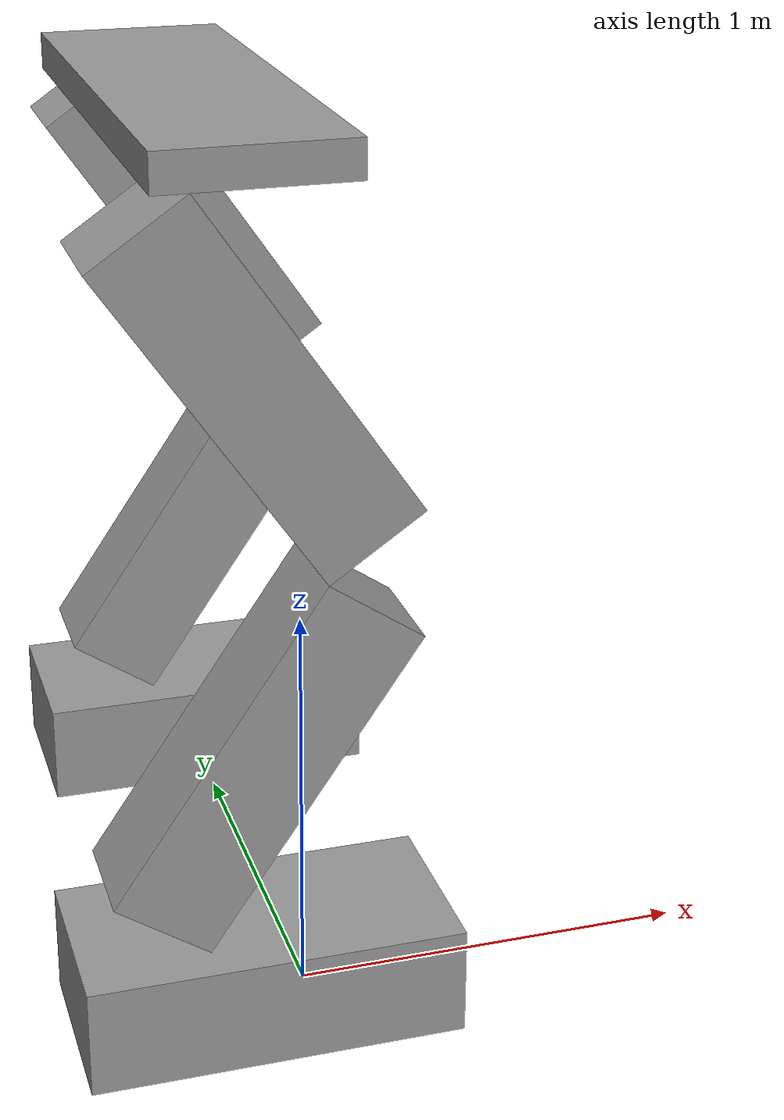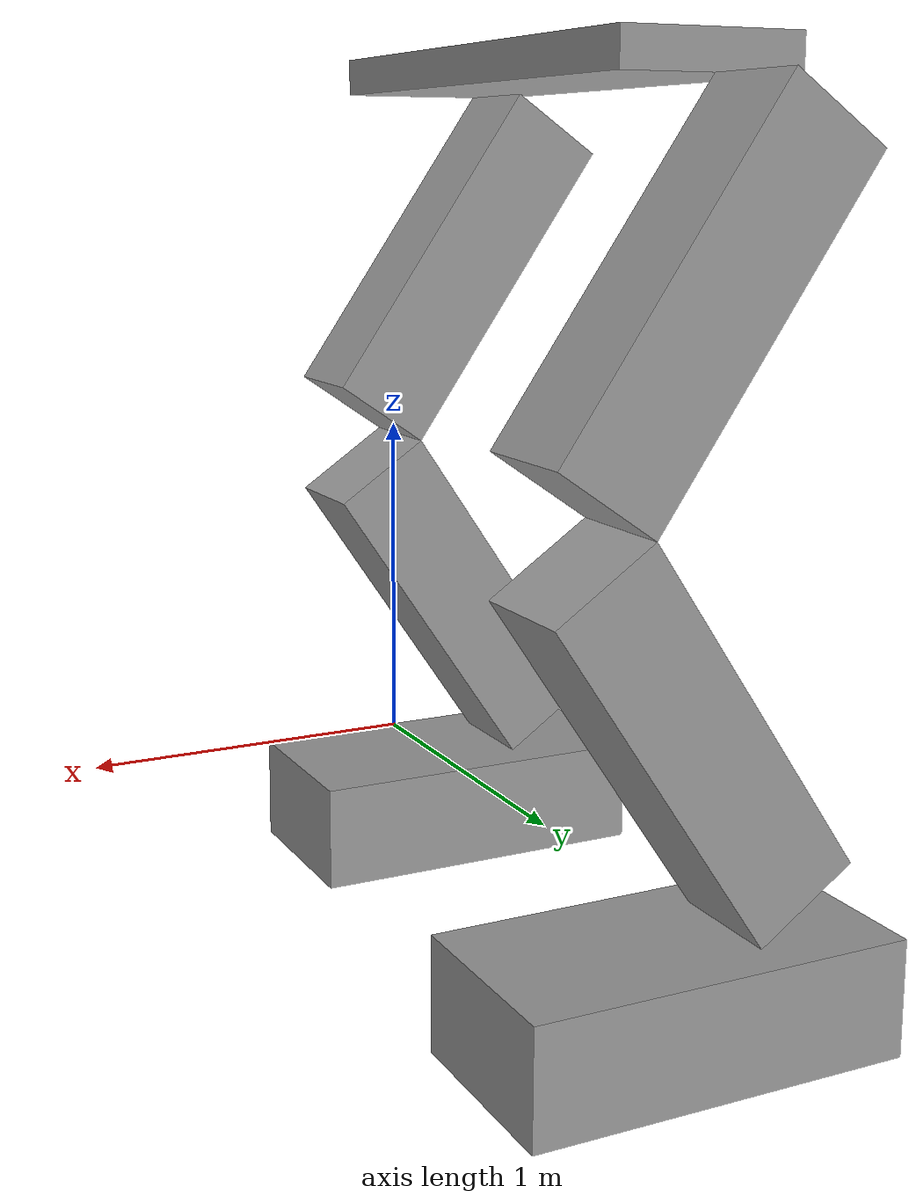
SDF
<?xml version='1.0'?>
<sdf version='1.6'>
  <model name='Humanoid'>
    <link name='link_0'>
      <pose frame=''>-0.048492 0.285713 -0.132344 0 -0 0</pose>
      <inertial>
        <mass>1</mass>
        <inertia>
          <ixx>0.166667</ixx>
          <ixy>0</ixy>
          <ixz>0</ixz>
          <iyy>0.166667</iyy>
          <iyz>0</iyz>
          <izz>0.166667</izz>
        </inertia>
        <pose frame=''>0 0 0 0 -0 0</pose>
      </inertial>
      <gravity>1</gravity>
      <self_collide>0</self_collide>
      <kinematic>0</kinematic>
      <visual name='visual'>
        <pose frame=''>0 0 0 0 -0 0</pose>
        <geometry>
          <box>
            <size>1 0.5 0.3</size>
          </box>
        </geometry>
        <material>
          <lighting>1</lighting>
          <script>
            <uri>file://media/materials/scripts/gazebo.material</uri>
            <name>Gazebo/Grey</name>
          </script>
          <shader type='pixel'>
            <normal_map>__default__</normal_map>
          </shader>
          <ambient>0.3 0.3 0.3 1</ambient>
          <diffuse>0.7 0.7 0.7 1</diffuse>
          <specular>0.01 0.01 0.01 1</specular>
          <emissive>0 0 0 1</emissive>
        </material>
        <transparency>0</transparency>
        <cast_shadows>1</cast_shadows>
      </visual>
      <collision name='collision'>
        <laser_retro>0</laser_retro>
        <max_contacts>10</max_contacts>
        <pose frame=''>0 0 0 0 -0 0</pose>
        <geometry>
          <box>
            <size>1 0.5 0.3</size>
          </box>
        </geometry>
        <surface>
          <friction>
            <ode>
              <mu>1</mu>
              <mu2>1</mu2>
              <fdir1>0 0 0</fdir1>
              <slip1>0</slip1>
              <slip2>0</slip2>
            </ode>
            <torsional>
              <coefficient>1</coefficient>
              <patch_radius>0</patch_radius>
              <surface_radius>0</surface_radius>
              <use_patch_radius>1</use_patch_radius>
              <ode>
                <slip>0</slip>
              </ode>
            </torsional>
          </friction>
          <bounce>
            <restitution_coefficient>0</restitution_coefficient>
            <threshold>1e+06</threshold>
          </bounce>
          <contact>
            <collide_without_contact>0</collide_without_contact>
            <collide_without_contact_bitmask>1</collide_without_contact_bitmask>
            <collide_bitmask>1</collide_bitmask>
            <ode>
              <soft_cfm>0</soft_cfm>
              <soft_erp>0.2</soft_erp>
              <kp>1e+13</kp>
              <kd>1</kd>
              <max_vel>0.01</max_vel>
              <min_depth>0</min_depth>
            </ode>
            <bullet>
              <split_impulse>1</split_impulse>
              <split_impulse_penetration_threshold>-0.01</split_impulse_penetration_threshold>
              <soft_cfm>0</soft_cfm>
              <soft_erp>0.2</soft_erp>
              <kp>1e+13</kp>
              <kd>1</kd>
            </bullet>
          </contact>
        </surface>
      </collision>
    </link>
    <link name='link_0_clone'>
      <pose frame=''>0.107629 1.78606 -0.132344 0 -0 0</pose>
      <inertial>
        <mass>1</mass>
        <inertia>
          <ixx>0.166667</ixx>
          <ixy>0</ixy>
          <ixz>0</ixz>
          <iyy>0.166667</iyy>
          <iyz>0</iyz>
          <izz>0.166667</izz>
        </inertia>
        <pose frame=''>0 0 0 0 -0 0</pose>
      </inertial>
      <self_collide>0</self_collide>
      <kinematic>0</kinematic>
      <visual name='visual'>
        <pose frame=''>0 0 0 0 -0 0</pose>
        <geometry>
          <box>
            <size>1 0.5 0.3</size>
          </box>
        </geometry>
        <material>
          <lighting>1</lighting>
          <script>
            <uri>file://media/materials/scripts/gazebo.material</uri>
            <name>Gazebo/Grey</name>
          </script>
          <shader type='pixel'>
            <normal_map>__default__</normal_map>
          </shader>
          <ambient>0.3 0.3 0.3 1</ambient>
          <diffuse>0.7 0.7 0.7 1</diffuse>
          <specular>0.01 0.01 0.01 1</specular>
          <emissive>0 0 0 1</emissive>
        </material>
        <transparency>0</transparency>
        <cast_shadows>1</cast_shadows>
      </visual>
      <collision name='collision'>
        <laser_retro>0</laser_retro>
        <max_contacts>10</max_contacts>
        <pose frame=''>0 0 0 0 -0 0</pose>
        <geometry>
          <box>
            <size>1 0.5 0.3</size>
          </box>
        </geometry>
        <surface>
          <friction>
            <ode>
              <mu>1</mu>
              <mu2>1</mu2>
              <fdir1>0 0 0</fdir1>
              <slip1>0</slip1>
              <slip2>0</slip2>
            </ode>
            <torsional>
              <coefficient>1</coefficient>
              <patch_radius>0</patch_radius>
              <surface_radius>0</surface_radius>
              <use_patch_radius>1</use_patch_radius>
              <ode>
                <slip>0</slip>
              </ode>
            </torsional>
          </friction>
          <bounce>
            <restitution_coefficient>0</restitution_coefficient>
            <threshold>1e+06</threshold>
          </bounce>
          <contact>
            <collide_without_contact>0</collide_without_contact>
            <collide_without_contact_bitmask>1</collide_without_contact_bitmask>
            <collide_bitmask>1</collide_bitmask>
            <ode>
              <soft_cfm>0</soft_cfm>
              <soft_erp>0.2</soft_erp>
              <kp>1e+13</kp>
              <kd>1</kd>
              <max_vel>0.01</max_vel>
              <min_depth>0</min_depth>
            </ode>
            <bullet>
              <split_impulse>1</split_impulse>
              <split_impulse_penetration_threshold>-0.01</split_impulse_penetration_threshold>
              <soft_cfm>0</soft_cfm>
              <soft_erp>0.2</soft_erp>
              <kp>1e+13</kp>
              <kd>1</kd>
            </bullet>
          </contact>
        </surface>
      </collision>
    </link>
    <link name='link_1'>
      <pose frame=''>-0.048492 0.285713 0.51502 0 0.6 0</pose>
      <inertial>
        <mass>1</mass>
        <inertia>
          <ixx>0.166667</ixx>
          <ixy>0</ixy>
          <ixz>0</ixz>
          <iyy>0.166667</iyy>
          <iyz>0</iyz>
          <izz>0.166667</izz>
        </inertia>
        <pose frame=''>0 0 0 0 -0 0</pose>
      </inertial>
      <gravity>1</gravity>
      <self_collide>0</self_collide>
      <kinematic>0</kinematic>
      <visual name='visual'>
        <pose frame=''>0 0 0 0 -0 0</pose>
        <geometry>
          <box>
            <size>0.3 0.3 1</size>
          </box>
        </geometry>
        <material>
          <lighting>1</lighting>
          <script>
            <uri>file://media/materials/scripts/gazebo.material</uri>
            <name>Gazebo/Grey</name>
          </script>
          <shader type='pixel'>
            <normal_map>__default__</normal_map>
          </shader>
          <ambient>0.3 0.3 0.3 1</ambient>
          <diffuse>0.7 0.7 0.7 1</diffuse>
          <specular>0.01 0.01 0.01 1</specular>
          <emissive>0 0 0 1</emissive>
        </material>
        <transparency>0</transparency>
        <cast_shadows>1</cast_shadows>
      </visual>
      <collision name='collision'>
        <laser_retro>0</laser_retro>
        <max_contacts>10</max_contacts>
        <pose frame=''>0 0 0 0 -0 0</pose>
        <geometry>
          <box>
            <size>0.3 0.3 1</size>
          </box>
        </geometry>
        <surface>
          <friction>
            <ode>
              <mu>1</mu>
              <mu2>1</mu2>
              <fdir1>0 0 0</fdir1>
              <slip1>0</slip1>
              <slip2>0</slip2>
            </ode>
            <torsional>
              <coefficient>1</coefficient>
              <patch_radius>0</patch_radius>
              <surface_radius>0</surface_radius>
              <use_patch_radius>1</use_patch_radius>
              <ode>
                <slip>0</slip>
              </ode>
            </torsional>
          </friction>
          <bounce>
            <restitution_coefficient>0</restitution_coefficient>
            <threshold>1e+06</threshold>
          </bounce>
          <contact>
            <collide_without_contact>0</collide_without_contact>
            <collide_without_contact_bitmask>1</collide_without_contact_bitmask>
            <collide_bitmask>1</collide_bitmask>
            <ode>
              <soft_cfm>0</soft_cfm>
              <soft_erp>0.2</soft_erp>
              <kp>1e+13</kp>
              <kd>1</kd>
              <max_vel>0.01</max_vel>
              <min_depth>0</min_depth>
            </ode>
            <bullet>
              <split_impulse>1</split_impulse>
              <split_impulse_penetration_threshold>-0.01</split_impulse_penetration_threshold>
              <soft_cfm>0</soft_cfm>
              <soft_erp>0.2</soft_erp>
              <kp>1e+13</kp>
              <kd>1</kd>
            </bullet>
          </contact>
        </surface>
      </collision>
    </link>
    <link name='link_1_clone'>
      <pose frame=''>-0.048492 0.285713 1.50975 0 -0.6 0</pose>
      <inertial>
        <mass>1</mass>
        <inertia>
          <ixx>0.166667</ixx>
          <ixy>0</ixy>
          <ixz>0</ixz>
          <iyy>0.166667</iyy>
          <iyz>0</iyz>
          <izz>0.166667</izz>
        </inertia>
        <pose frame=''>0 0 0 0 -0 0</pose>
      </inertial>
      <self_collide>0</self_collide>
      <kinematic>0</kinematic>
      <gravity>1</gravity>
      <visual name='visual'>
        <pose frame=''>0 0 0 0 -0 0</pose>
        <geometry>
          <box>
            <size>0.3 0.3 1</size>
          </box>
        </geometry>
        <material>
          <lighting>1</lighting>
          <script>
            <uri>file://media/materials/scripts/gazebo.material</uri>
            <name>Gazebo/Grey</name>
          </script>
          <shader type='pixel'>
            <normal_map>__default__</normal_map>
          </shader>
          <ambient>0.3 0.3 0.3 1</ambient>
          <diffuse>0.7 0.7 0.7 1</diffuse>
          <specular>0.01 0.01 0.01 1</specular>
          <emissive>0 0 0 1</emissive>
        </material>
        <transparency>0</transparency>
        <cast_shadows>1</cast_shadows>
      </visual>
      <collision name='collision'>
        <laser_retro>0</laser_retro>
        <max_contacts>10</max_contacts>
        <pose frame=''>0 0 0 0 -0 0</pose>
        <geometry>
          <box>
            <size>0.3 0.3 1</size>
          </box>
        </geometry>
        <surface>
          <friction>
            <ode>
              <mu>1</mu>
              <mu2>1</mu2>
              <fdir1>0 0 0</fdir1>
              <slip1>0</slip1>
              <slip2>0</slip2>
            </ode>
            <torsional>
              <coefficient>1</coefficient>
              <patch_radius>0</patch_radius>
              <surface_radius>0</surface_radius>
              <use_patch_radius>1</use_patch_radius>
              <ode>
                <slip>0</slip>
              </ode>
            </torsional>
          </friction>
          <bounce>
            <restitution_coefficient>0</restitution_coefficient>
            <threshold>1e+06</threshold>
          </bounce>
          <contact>
            <collide_without_contact>0</collide_without_contact>
            <collide_without_contact_bitmask>1</collide_without_contact_bitmask>
            <collide_bitmask>1</collide_bitmask>
            <ode>
              <soft_cfm>0</soft_cfm>
              <soft_erp>0.2</soft_erp>
              <kp>1e+13</kp>
              <kd>1</kd>
              <max_vel>0.01</max_vel>
              <min_depth>0</min_depth>
            </ode>
            <bullet>
              <split_impulse>1</split_impulse>
              <split_impulse_penetration_threshold>-0.01</split_impulse_penetration_threshold>
              <soft_cfm>0</soft_cfm>
              <soft_erp>0.2</soft_erp>
              <kp>1e+13</kp>
              <kd>1</kd>
            </bullet>
          </contact>
        </surface>
      </collision>
    </link>
    <link name='link_1_clone_0'>
      <pose frame=''>0.107629 1.78606 0.51502 0 0.6 0</pose>
      <inertial>
        <mass>1</mass>
        <inertia>
          <ixx>0.166667</ixx>
          <ixy>0</ixy>
          <ixz>0</ixz>
          <iyy>0.166667</iyy>
          <iyz>0</iyz>
          <izz>0.166667</izz>
        </inertia>
        <pose frame=''>0 0 0 0 -0 0</pose>
      </inertial>
      <self_collide>0</self_collide>
      <kinematic>0</kinematic>
      <visual name='visual'>
        <pose frame=''>0 0 0 0 -0 0</pose>
        <geometry>
          <box>
            <size>0.3 0.3 1</size>
          </box>
        </geometry>
        <material>
          <lighting>1</lighting>
          <script>
            <uri>file://media/materials/scripts/gazebo.material</uri>
            <name>Gazebo/Grey</name>
          </script>
          <shader type='pixel'>
            <normal_map>__default__</normal_map>
          </shader>
          <ambient>0.3 0.3 0.3 1</ambient>
          <diffuse>0.7 0.7 0.7 1</diffuse>
          <specular>0.01 0.01 0.01 1</specular>
          <emissive>0 0 0 1</emissive>
        </material>
        <transparency>0</transparency>
        <cast_shadows>1</cast_shadows>
      </visual>
      <collision name='collision'>
        <laser_retro>0</laser_retro>
        <max_contacts>10</max_contacts>
        <pose frame=''>0 0 0 0 -0 0</pose>
        <geometry>
          <box>
            <size>0.3 0.3 1</size>
          </box>
        </geometry>
        <surface>
          <friction>
            <ode>
              <mu>1</mu>
              <mu2>1</mu2>
              <fdir1>0 0 0</fdir1>
              <slip1>0</slip1>
              <slip2>0</slip2>
            </ode>
            <torsional>
              <coefficient>1</coefficient>
              <patch_radius>0</patch_radius>
              <surface_radius>0</surface_radius>
              <use_patch_radius>1</use_patch_radius>
              <ode>
                <slip>0</slip>
              </ode>
            </torsional>
          </friction>
          <bounce>
            <restitution_coefficient>0</restitution_coefficient>
            <threshold>1e+06</threshold>
          </bounce>
          <contact>
            <collide_without_contact>0</collide_without_contact>
            <collide_without_contact_bitmask>1</collide_without_contact_bitmask>
            <collide_bitmask>1</collide_bitmask>
            <ode>
              <soft_cfm>0</soft_cfm>
              <soft_erp>0.2</soft_erp>
              <kp>1e+13</kp>
              <kd>1</kd>
              <max_vel>0.01</max_vel>
              <min_depth>0</min_depth>
            </ode>
            <bullet>
              <split_impulse>1</split_impulse>
              <split_impulse_penetration_threshold>-0.01</split_impulse_penetration_threshold>
              <soft_cfm>0</soft_cfm>
              <soft_erp>0.2</soft_erp>
              <kp>1e+13</kp>
              <kd>1</kd>
            </bullet>
          </contact>
        </surface>
      </collision>
    </link>
    <link name='link_1_clone_clone'>
      <pose frame=''>0.107629 1.78606 1.50975 0 -0.6 0</pose>
      <inertial>
        <mass>1</mass>
        <inertia>
          <ixx>0.166667</ixx>
          <ixy>0</ixy>
          <ixz>0</ixz>
          <iyy>0.166667</iyy>
          <iyz>0</iyz>
          <izz>0.166667</izz>
        </inertia>
        <pose frame=''>0 0 0 0 -0 0</pose>
      </inertial>
      <self_collide>0</self_collide>
      <kinematic>0</kinematic>
      <visual name='visual'>
        <pose frame=''>0 0 0 0 -0 0</pose>
        <geometry>
          <box>
            <size>0.3 0.3 1</size>
          </box>
        </geometry>
        <material>
          <lighting>1</lighting>
          <script>
            <uri>file://media/materials/scripts/gazebo.material</uri>
            <name>Gazebo/Grey</name>
          </script>
          <shader type='pixel'>
            <normal_map>__default__</normal_map>
          </shader>
          <ambient>0.3 0.3 0.3 1</ambient>
          <diffuse>0.7 0.7 0.7 1</diffuse>
          <specular>0.01 0.01 0.01 1</specular>
          <emissive>0 0 0 1</emissive>
        </material>
        <transparency>0</transparency>
        <cast_shadows>1</cast_shadows>
      </visual>
      <collision name='collision'>
        <laser_retro>0</laser_retro>
        <max_contacts>10</max_contacts>
        <pose frame=''>0 0 0 0 -0 0</pose>
        <geometry>
          <box>
            <size>0.3 0.3 1</size>
          </box>
        </geometry>
        <surface>
          <friction>
            <ode>
              <mu>1</mu>
              <mu2>1</mu2>
              <fdir1>0 0 0</fdir1>
              <slip1>0</slip1>
              <slip2>0</slip2>
            </ode>
            <torsional>
              <coefficient>1</coefficient>
              <patch_radius>0</patch_radius>
              <surface_radius>0</surface_radius>
              <use_patch_radius>1</use_patch_radius>
              <ode>
                <slip>0</slip>
              </ode>
            </torsional>
          </friction>
          <bounce>
            <restitution_coefficient>0</restitution_coefficient>
            <threshold>1e+06</threshold>
          </bounce>
          <contact>
            <collide_without_contact>0</collide_without_contact>
            <collide_without_contact_bitmask>1</collide_without_contact_bitmask>
            <collide_bitmask>1</collide_bitmask>
            <ode>
              <soft_cfm>0</soft_cfm>
              <soft_erp>0.2</soft_erp>
              <kp>1e+13</kp>
              <kd>1</kd>
              <max_vel>0.01</max_vel>
              <min_depth>0</min_depth>
            </ode>
            <bullet>
              <split_impulse>1</split_impulse>
              <split_impulse_penetration_threshold>-0.01</split_impulse_penetration_threshold>
              <soft_cfm>0</soft_cfm>
              <soft_erp>0.2</soft_erp>
              <kp>1e+13</kp>
              <kd>1</kd>
            </bullet>
          </contact>
        </surface>
      </collision>
    </link>
    <link name='link_2'>
      <pose frame=''>-0.048492 0.885713 2.05711 0 -0 0</pose>
      <inertial>
        <mass>1</mass>
        <inertia>
          <ixx>0.166667</ixx>
          <ixy>0</ixy>
          <ixz>0</ixz>
          <iyy>0.166667</iyy>
          <iyz>0</iyz>
          <izz>0.166667</izz>
        </inertia>
        <pose frame=''>0 0 0 0 -0 0</pose>
      </inertial>
      <gravity>1</gravity>
      <self_collide>0</self_collide>
      <kinematic>0</kinematic>
      <visual name='visual'>
        <pose frame=''>0 0 0 0 -0 0</pose>
        <geometry>
          <box>
            <size>0.5 1.5 0.1</size>
          </box>
        </geometry>
        <material>
          <lighting>1</lighting>
          <script>
            <uri>file://media/materials/scripts/gazebo.material</uri>
            <name>Gazebo/Grey</name>
          </script>
          <shader type='pixel'>
            <normal_map>__default__</normal_map>
          </shader>
          <ambient>0.3 0.3 0.3 1</ambient>
          <diffuse>0.7 0.7 0.7 1</diffuse>
          <specular>0.01 0.01 0.01 1</specular>
          <emissive>0 0 0 1</emissive>
        </material>
        <transparency>0</transparency>
        <cast_shadows>1</cast_shadows>
      </visual>
      <collision name='collision'>
        <laser_retro>0</laser_retro>
        <max_contacts>10</max_contacts>
        <pose frame=''>0 0 0 0 -0 0</pose>
        <geometry>
          <box>
            <size>0.5 1.5 0.1</size>
          </box>
        </geometry>
        <surface>
          <friction>
            <ode>
              <mu>1</mu>
              <mu2>1</mu2>
              <fdir1>0 0 0</fdir1>
              <slip1>0</slip1>
              <slip2>0</slip2>
            </ode>
            <torsional>
              <coefficient>1</coefficient>
              <patch_radius>0</patch_radius>
              <surface_radius>0</surface_radius>
              <use_patch_radius>1</use_patch_radius>
              <ode>
                <slip>0</slip>
              </ode>
            </torsional>
          </friction>
          <bounce>
            <restitution_coefficient>0</restitution_coefficient>
            <threshold>1e+06</threshold>
          </bounce>
          <contact>
            <collide_without_contact>0</collide_without_contact>
            <collide_without_contact_bitmask>1</collide_without_contact_bitmask>
            <collide_bitmask>1</collide_bitmask>
            <ode>
              <soft_cfm>0</soft_cfm>
              <soft_erp>0.2</soft_erp>
              <kp>1e+13</kp>
              <kd>1</kd>
              <max_vel>0.01</max_vel>
              <min_depth>0</min_depth>
            </ode>
            <bullet>
              <split_impulse>1</split_impulse>
              <split_impulse_penetration_threshold>-0.01</split_impulse_penetration_threshold>
              <soft_cfm>0</soft_cfm>
              <soft_erp>0.2</soft_erp>
              <kp>1e+13</kp>
              <kd>1</kd>
            </bullet>
          </contact>
        </surface>
      </collision>
    </link>
    <joint name='link_1_JOINT_9' type='revolute'>
      <parent>link_1</parent>
      <child>link_0</child>
      <pose frame=''>0 0 0 0 -0 0</pose>
      <axis>
        <xyz>1 0 0</xyz>
        <use_parent_model_frame>0</use_parent_model_frame>
        <limit>
          <lower>-1.79769e+308</lower>
          <upper>1.79769e+308</upper>
          <effort>-1</effort>
          <velocity>-1</velocity>
        </limit>
        <dynamics>
          <spring_reference>0</spring_reference>
          <spring_stiffness>0</spring_stiffness>
          <damping>0</damping>
        </dynamics>
      </axis>
      <physics>
        <ode>
          <limit>
            <cfm>0</cfm>
            <erp>0.2</erp>
          </limit>
          <suspension>
            <cfm>0</cfm>
            <erp>0.2</erp>
          </suspension>
        </ode>
      </physics>
    </joint>
    <joint name='link_1_clone_0_JOINT_10' type='revolute'>
      <parent>link_1_clone_0</parent>
      <child>link_0_clone</child>
      <pose frame=''>0 0 0 0 -0 0</pose>
      <axis>
        <xyz>1 0 0</xyz>
        <use_parent_model_frame>0</use_parent_model_frame>
        <limit>
          <lower>-1.79769e+308</lower>
          <upper>1.79769e+308</upper>
          <effort>-1</effort>
          <velocity>-1</velocity>
        </limit>
        <dynamics>
          <spring_reference>0</spring_reference>
          <spring_stiffness>0</spring_stiffness>
          <damping>0</damping>
        </dynamics>
      </axis>
      <physics>
        <ode>
          <limit>
            <cfm>0</cfm>
            <erp>0.2</erp>
          </limit>
          <suspension>
            <cfm>0</cfm>
            <erp>0.2</erp>
          </suspension>
        </ode>
      </physics>
    </joint>
    <joint name='link_1_clone_JOINT_7' type='revolute'>
      <parent>link_1_clone</parent>
      <child>link_1</child>
      <pose frame=''>0 0 0 0 -0 0</pose>
      <axis>
        <xyz>1 0 0</xyz>
        <use_parent_model_frame>0</use_parent_model_frame>
        <limit>
          <lower>-1.79769e+308</lower>
          <upper>1.79769e+308</upper>
          <effort>-1</effort>
          <velocity>-1</velocity>
        </limit>
        <dynamics>
          <spring_reference>0</spring_reference>
          <spring_stiffness>0</spring_stiffness>
          <damping>0</damping>
        </dynamics>
      </axis>
      <physics>
        <ode>
          <limit>
            <cfm>0</cfm>
            <erp>0.2</erp>
          </limit>
          <suspension>
            <cfm>0</cfm>
            <erp>0.2</erp>
          </suspension>
        </ode>
      </physics>
    </joint>
    <joint name='link_1_clone_clone_JOINT_8' type='revolute'>
      <parent>link_1_clone_clone</parent>
      <child>link_1_clone_0</child>
      <pose frame=''>0 0 0 0 -0 0</pose>
      <axis>
        <xyz>1 0 0</xyz>
        <use_parent_model_frame>0</use_parent_model_frame>
        <limit>
          <lower>-1.79769e+308</lower>
          <upper>1.79769e+308</upper>
          <effort>-1</effort>
          <velocity>-1</velocity>
        </limit>
        <dynamics>
          <spring_reference>0</spring_reference>
          <spring_stiffness>0</spring_stiffness>
          <damping>0</damping>
        </dynamics>
      </axis>
      <physics>
        <ode>
          <limit>
            <cfm>0</cfm>
            <erp>0.2</erp>
          </limit>
          <suspension>
            <cfm>0</cfm>
            <erp>0.2</erp>
          </suspension>
        </ode>
      </physics>
    </joint>
    <joint name='link_2_JOINT_5' type='revolute'>
      <parent>link_2</parent>
      <child>link_1_clone</child>
      <pose frame=''>0 0 0 0 -0 0</pose>
      <axis>
        <xyz>1 0 0</xyz>
        <use_parent_model_frame>0</use_parent_model_frame>
        <limit>
          <lower>-1.79769e+308</lower>
          <upper>1.79769e+308</upper>
          <effort>-1</effort>
          <velocity>-1</velocity>
        </limit>
        <dynamics>
          <spring_reference>0</spring_reference>
          <spring_stiffness>0</spring_stiffness>
          <damping>0</damping>
        </dynamics>
      </axis>
      <physics>
        <ode>
          <limit>
            <cfm>0</cfm>
            <erp>0.2</erp>
          </limit>
          <suspension>
            <cfm>0</cfm>
            <erp>0.2</erp>
          </suspension>
        </ode>
      </physics>
    </joint>
    <joint name='link_2_JOINT_6' type='revolute'>
      <parent>link_2</parent>
      <child>link_1_clone_clone</child>
      <pose frame=''>0 0 0 0 -0 0</pose>
      <axis>
        <xyz>1 0 0</xyz>
        <use_parent_model_frame>0</use_parent_model_frame>
        <limit>
          <lower>-1.79769e+308</lower>
          <upper>1.79769e+308</upper>
          <effort>-1</effort>
          <velocity>-1</velocity>
        </limit>
        <dynamics>
          <spring_reference>0</spring_reference>
          <spring_stiffness>0</spring_stiffness>
          <damping>0</damping>
        </dynamics>
      </axis>
      <physics>
        <ode>
          <limit>
            <cfm>0</cfm>
            <erp>0.2</erp>
          </limit>
          <suspension>
            <cfm>0</cfm>
            <erp>0.2</erp>
          </suspension>
        </ode>
      </physics>
    </joint>
    <static>0</static>
    <allow_auto_disable>1</allow_auto_disable>
  </model>
</sdf>
